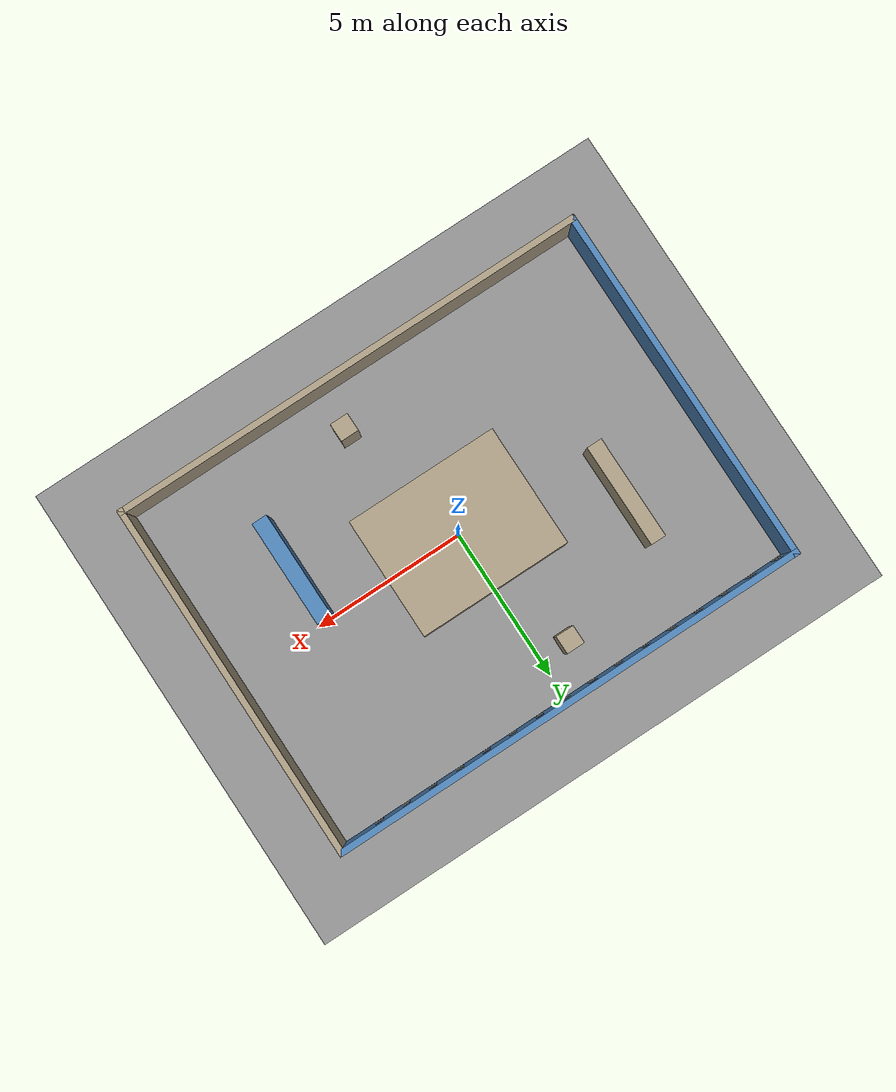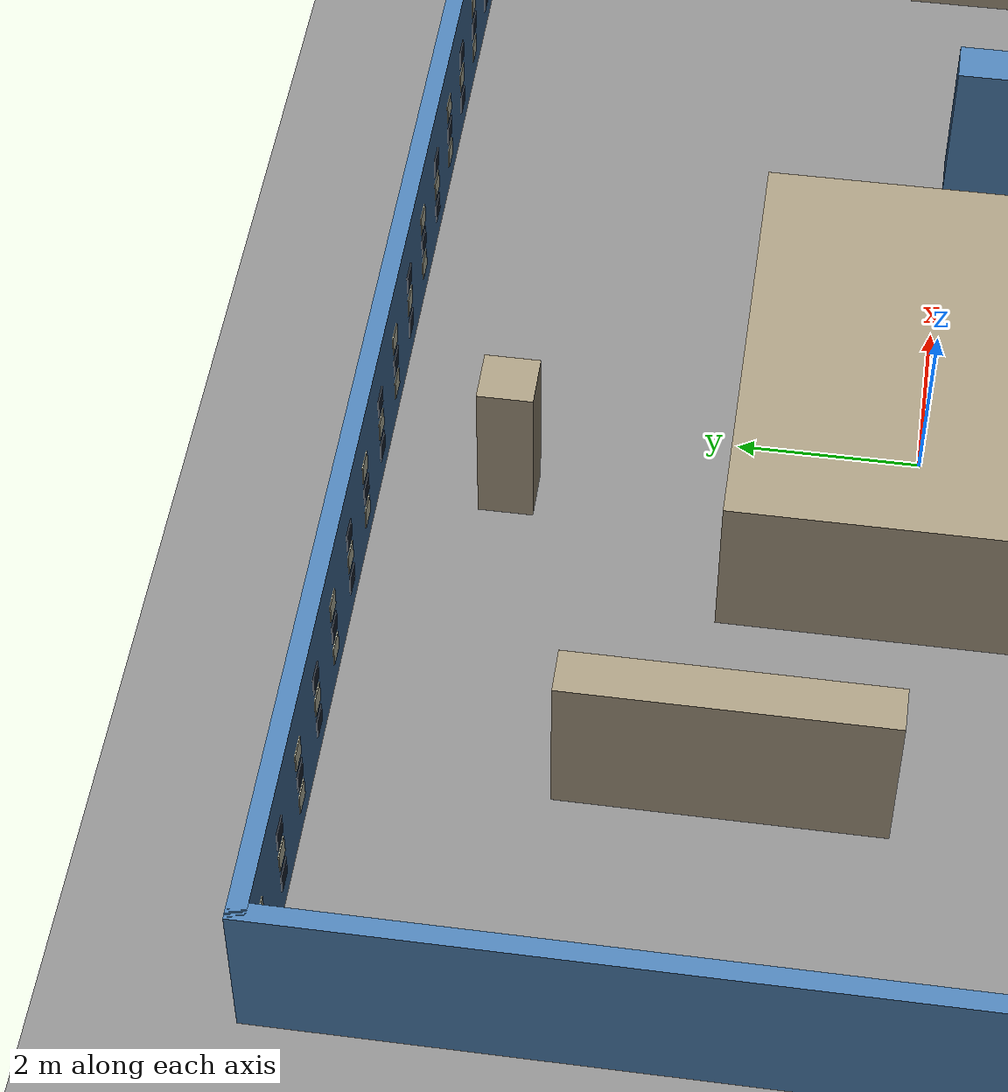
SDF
<?xml version="1.0"?><sdf version="1.6"><world name="test_ring">
      <physics name="ode" type="ode"><max_step_size>0.002</max_step_size><real_time_update_rate>500</real_time_update_rate></physics>
      <scene><ambient>0.5 0.5 0.5 1</ambient><background>0.2 0.2 0.2 1</background><shadows>false</shadows></scene>
      <light name="sun" type="directional"><pose>0 0 10 0 0 0</pose><diffuse>0.8 0.8 0.8 1</diffuse>
      <specular>0.1 0.1 0.1 1</specular><direction>0.1 0.2 -1</direction><cast_shadows>false</cast_shadows></light>
      <model name="ground"><static>true</static><pose>0 0 -.05 0 0 0</pose><link name="ground">
      <collision name="ground"><geometry><box><size>20 16 .1</size></box></geometry></collision>
      <visual name="ground"><geometry><box><size>20 16 .1</size></box></geometry>
      <material><ambient>0.55 0.55 0.55 1</ambient><diffuse>0.55 0.55 0.55 1</diffuse></material></visual></link></model>
      <model name="wall_0"><static>true</static>
      <pose>-7.9 0.0 0.9 0 0 0</pose><link name="body">
      <collision name="collision"><geometry><box><size>0.20000000000000018 12 1.8</size></box></geometry></collision>
      <visual name="visual"><geometry><box><size>0.20000000000000018 12 1.8</size></box></geometry>
      <material><ambient>0.3 0.5 0.7 1</ambient><diffuse>0.3 0.5 0.7 1</diffuse></material></visual>
      </link></model><model name="wall_1"><static>true</static>
      <pose>7.9 0.0 0.9 0 0 0</pose><link name="body">
      <collision name="collision"><geometry><box><size>0.20000000000000018 12 1.8</size></box></geometry></collision>
      <visual name="visual"><geometry><box><size>0.20000000000000018 12 1.8</size></box></geometry>
      <material><ambient>0.65 0.60 0.5 1</ambient><diffuse>0.65 0.60 0.5 1</diffuse></material></visual>
      </link></model><model name="wall_2"><static>true</static>
      <pose>0.0 -5.9 0.9 0 0 0</pose><link name="body">
      <collision name="collision"><geometry><box><size>16 0.20000000000000018 1.8</size></box></geometry></collision>
      <visual name="visual"><geometry><box><size>16 0.20000000000000018 1.8</size></box></geometry>
      <material><ambient>0.65 0.60 0.5 1</ambient><diffuse>0.65 0.60 0.5 1</diffuse></material></visual>
      </link></model><model name="wall_3"><static>true</static>
      <pose>0.0 5.9 0.9 0 0 0</pose><link name="body">
      <collision name="collision"><geometry><box><size>16 0.20000000000000018 1.8</size></box></geometry></collision>
      <visual name="visual"><geometry><box><size>16 0.20000000000000018 1.8</size></box></geometry>
      <material><ambient>0.3 0.5 0.7 1</ambient><diffuse>0.3 0.5 0.7 1</diffuse></material></visual>
      </link></model><model name="wall_4"><static>true</static>
      <pose>0.0 0.0 0.9 0 0 0</pose><link name="body">
      <collision name="collision"><geometry><box><size>5.0 4.0 1.8</size></box></geometry></collision>
      <visual name="visual"><geometry><box><size>5.0 4.0 1.8</size></box></geometry>
      <material><ambient>0.65 0.60 0.5 1</ambient><diffuse>0.65 0.60 0.5 1</diffuse></material></visual>
      </link></model><model name="wall_5"><static>true</static>
      <pose>-4.75 1.7 0.9 0 0 0</pose><link name="body">
      <collision name="collision"><geometry><box><size>0.5 3.4 1.8</size></box></geometry></collision>
      <visual name="visual"><geometry><box><size>0.5 3.4 1.8</size></box></geometry>
      <material><ambient>0.65 0.60 0.5 1</ambient><diffuse>0.65 0.60 0.5 1</diffuse></material></visual>
      </link></model><model name="wall_6"><static>true</static>
      <pose>4.65 -1.75 0.9 0 0 0</pose><link name="body">
      <collision name="collision"><geometry><box><size>0.5 3.5 1.8</size></box></geometry></collision>
      <visual name="visual"><geometry><box><size>0.5 3.5 1.8</size></box></geometry>
      <material><ambient>0.3 0.5 0.7 1</ambient><diffuse>0.3 0.5 0.7 1</diffuse></material></visual>
      </link></model><model name="wall_7"><static>true</static>
      <pose>-1.0 4.4 0.9 0 0 0</pose><link name="body">
      <collision name="collision"><geometry><box><size>0.6000000000000001 0.6000000000000005 1.8</size></box></geometry></collision>
      <visual name="visual"><geometry><box><size>0.6000000000000001 0.6000000000000005 1.8</size></box></geometry>
      <material><ambient>0.65 0.60 0.5 1</ambient><diffuse>0.65 0.60 0.5 1</diffuse></material></visual>
      </link></model><model name="wall_8"><static>true</static>
      <pose>1.1 -4.4 0.9 0 0 0</pose><link name="body">
      <collision name="collision"><geometry><box><size>0.5999999999999999 0.6000000000000005 1.8</size></box></geometry></collision>
      <visual name="visual"><geometry><box><size>0.5999999999999999 0.6000000000000005 1.8</size></box></geometry>
      <material><ambient>0.65 0.60 0.5 1</ambient><diffuse>0.65 0.60 0.5 1</diffuse></material></visual>
      </link></model><model name="panel_0_0"><static>true</static>
              <pose>-7.5 5.795 0.45 0 0 0</pose><link name="visual_only">
              <visual name="panel"><geometry><box><size>.25 .01 .25</size></box></geometry>
              <material><ambient>0.85 0.85 0.75 1</ambient><diffuse>0.85 0.85 0.75 1</diffuse></material></visual>
              </link></model><model name="panel_0_1"><static>true</static>
              <pose>-7.5 5.795 0.8 0 0 0</pose><link name="visual_only">
              <visual name="panel"><geometry><box><size>.25 .01 .25</size></box></geometry>
              <material><ambient>0.12 0.16 0.22 1</ambient><diffuse>0.12 0.16 0.22 1</diffuse></material></visual>
              </link></model><model name="panel_0_2"><static>true</static>
              <pose>-7.5 5.795 1.15 0 0 0</pose><link name="visual_only">
              <visual name="panel"><geometry><box><size>.25 .01 .25</size></box></geometry>
              <material><ambient>0.85 0.85 0.75 1</ambient><diffuse>0.85 0.85 0.75 1</diffuse></material></visual>
              </link></model><model name="panel_1_0"><static>true</static>
              <pose>-6.5625 5.795 0.45 0 0 0</pose><link name="visual_only">
              <visual name="panel"><geometry><box><size>.25 .01 .25</size></box></geometry>
              <material><ambient>0.12 0.16 0.22 1</ambient><diffuse>0.12 0.16 0.22 1</diffuse></material></visual>
              </link></model><model name="panel_1_1"><static>true</static>
              <pose>-6.5625 5.795 0.8 0 0 0</pose><link name="visual_only">
              <visual name="panel"><geometry><box><size>.25 .01 .25</size></box></geometry>
              <material><ambient>0.85 0.85 0.75 1</ambient><diffuse>0.85 0.85 0.75 1</diffuse></material></visual>
              </link></model><model name="panel_1_2"><static>true</static>
              <pose>-6.5625 5.795 1.15 0 0 0</pose><link name="visual_only">
              <visual name="panel"><geometry><box><size>.25 .01 .25</size></box></geometry>
              <material><ambient>0.12 0.16 0.22 1</ambient><diffuse>0.12 0.16 0.22 1</diffuse></material></visual>
              </link></model><model name="panel_2_0"><static>true</static>
              <pose>-5.625 5.795 0.45 0 0 0</pose><link name="visual_only">
              <visual name="panel"><geometry><box><size>.25 .01 .25</size></box></geometry>
              <material><ambient>0.85 0.85 0.75 1</ambient><diffuse>0.85 0.85 0.75 1</diffuse></material></visual>
              </link></model><model name="panel_2_1"><static>true</static>
              <pose>-5.625 5.795 0.8 0 0 0</pose><link name="visual_only">
              <visual name="panel"><geometry><box><size>.25 .01 .25</size></box></geometry>
              <material><ambient>0.12 0.16 0.22 1</ambient><diffuse>0.12 0.16 0.22 1</diffuse></material></visual>
              </link></model><model name="panel_2_2"><static>true</static>
              <pose>-5.625 5.795 1.15 0 0 0</pose><link name="visual_only">
              <visual name="panel"><geometry><box><size>.25 .01 .25</size></box></geometry>
              <material><ambient>0.85 0.85 0.75 1</ambient><diffuse>0.85 0.85 0.75 1</diffuse></material></visual>
              </link></model><model name="panel_3_0"><static>true</static>
              <pose>-4.6875 5.795 0.45 0 0 0</pose><link name="visual_only">
              <visual name="panel"><geometry><box><size>.25 .01 .25</size></box></geometry>
              <material><ambient>0.12 0.16 0.22 1</ambient><diffuse>0.12 0.16 0.22 1</diffuse></material></visual>
              </link></model><model name="panel_3_1"><static>true</static>
              <pose>-4.6875 5.795 0.8 0 0 0</pose><link name="visual_only">
              <visual name="panel"><geometry><box><size>.25 .01 .25</size></box></geometry>
              <material><ambient>0.85 0.85 0.75 1</ambient><diffuse>0.85 0.85 0.75 1</diffuse></material></visual>
              </link></model><model name="panel_3_2"><static>true</static>
              <pose>-4.6875 5.795 1.15 0 0 0</pose><link name="visual_only">
              <visual name="panel"><geometry><box><size>.25 .01 .25</size></box></geometry>
              <material><ambient>0.12 0.16 0.22 1</ambient><diffuse>0.12 0.16 0.22 1</diffuse></material></visual>
              </link></model><model name="panel_4_0"><static>true</static>
              <pose>-3.75 5.795 0.45 0 0 0</pose><link name="visual_only">
              <visual name="panel"><geometry><box><size>.25 .01 .25</size></box></geometry>
              <material><ambient>0.85 0.85 0.75 1</ambient><diffuse>0.85 0.85 0.75 1</diffuse></material></visual>
              </link></model><model name="panel_4_1"><static>true</static>
              <pose>-3.75 5.795 0.8 0 0 0</pose><link name="visual_only">
              <visual name="panel"><geometry><box><size>.25 .01 .25</size></box></geometry>
              <material><ambient>0.12 0.16 0.22 1</ambient><diffuse>0.12 0.16 0.22 1</diffuse></material></visual>
              </link></model><model name="panel_4_2"><static>true</static>
              <pose>-3.75 5.795 1.15 0 0 0</pose><link name="visual_only">
              <visual name="panel"><geometry><box><size>.25 .01 .25</size></box></geometry>
              <material><ambient>0.85 0.85 0.75 1</ambient><diffuse>0.85 0.85 0.75 1</diffuse></material></visual>
              </link></model><model name="panel_5_0"><static>true</static>
              <pose>-2.8125 5.795 0.45 0 0 0</pose><link name="visual_only">
              <visual name="panel"><geometry><box><size>.25 .01 .25</size></box></geometry>
              <material><ambient>0.12 0.16 0.22 1</ambient><diffuse>0.12 0.16 0.22 1</diffuse></material></visual>
              </link></model><model name="panel_5_1"><static>true</static>
              <pose>-2.8125 5.795 0.8 0 0 0</pose><link name="visual_only">
              <visual name="panel"><geometry><box><size>.25 .01 .25</size></box></geometry>
              <material><ambient>0.85 0.85 0.75 1</ambient><diffuse>0.85 0.85 0.75 1</diffuse></material></visual>
              </link></model><model name="panel_5_2"><static>true</static>
              <pose>-2.8125 5.795 1.15 0 0 0</pose><link name="visual_only">
              <visual name="panel"><geometry><box><size>.25 .01 .25</size></box></geometry>
              <material><ambient>0.12 0.16 0.22 1</ambient><diffuse>0.12 0.16 0.22 1</diffuse></material></visual>
              </link></model><model name="panel_6_0"><static>true</static>
              <pose>-1.875 5.795 0.45 0 0 0</pose><link name="visual_only">
              <visual name="panel"><geometry><box><size>.25 .01 .25</size></box></geometry>
              <material><ambient>0.85 0.85 0.75 1</ambient><diffuse>0.85 0.85 0.75 1</diffuse></material></visual>
              </link></model><model name="panel_6_1"><static>true</static>
              <pose>-1.875 5.795 0.8 0 0 0</pose><link name="visual_only">
              <visual name="panel"><geometry><box><size>.25 .01 .25</size></box></geometry>
              <material><ambient>0.12 0.16 0.22 1</ambient><diffuse>0.12 0.16 0.22 1</diffuse></material></visual>
              </link></model><model name="panel_6_2"><static>true</static>
              <pose>-1.875 5.795 1.15 0 0 0</pose><link name="visual_only">
              <visual name="panel"><geometry><box><size>.25 .01 .25</size></box></geometry>
              <material><ambient>0.85 0.85 0.75 1</ambient><diffuse>0.85 0.85 0.75 1</diffuse></material></visual>
              </link></model><model name="panel_7_0"><static>true</static>
              <pose>-0.9375 5.795 0.45 0 0 0</pose><link name="visual_only">
              <visual name="panel"><geometry><box><size>.25 .01 .25</size></box></geometry>
              <material><ambient>0.12 0.16 0.22 1</ambient><diffuse>0.12 0.16 0.22 1</diffuse></material></visual>
              </link></model><model name="panel_7_1"><static>true</static>
              <pose>-0.9375 5.795 0.8 0 0 0</pose><link name="visual_only">
              <visual name="panel"><geometry><box><size>.25 .01 .25</size></box></geometry>
              <material><ambient>0.85 0.85 0.75 1</ambient><diffuse>0.85 0.85 0.75 1</diffuse></material></visual>
              </link></model><model name="panel_7_2"><static>true</static>
              <pose>-0.9375 5.795 1.15 0 0 0</pose><link name="visual_only">
              <visual name="panel"><geometry><box><size>.25 .01 .25</size></box></geometry>
              <material><ambient>0.12 0.16 0.22 1</ambient><diffuse>0.12 0.16 0.22 1</diffuse></material></visual>
              </link></model><model name="panel_8_0"><static>true</static>
              <pose>0.0 5.795 0.45 0 0 0</pose><link name="visual_only">
              <visual name="panel"><geometry><box><size>.25 .01 .25</size></box></geometry>
              <material><ambient>0.85 0.85 0.75 1</ambient><diffuse>0.85 0.85 0.75 1</diffuse></material></visual>
              </link></model><model name="panel_8_1"><static>true</static>
              <pose>0.0 5.795 0.8 0 0 0</pose><link name="visual_only">
              <visual name="panel"><geometry><box><size>.25 .01 .25</size></box></geometry>
              <material><ambient>0.12 0.16 0.22 1</ambient><diffuse>0.12 0.16 0.22 1</diffuse></material></visual>
              </link></model><model name="panel_8_2"><static>true</static>
              <pose>0.0 5.795 1.15 0 0 0</pose><link name="visual_only">
              <visual name="panel"><geometry><box><size>.25 .01 .25</size></box></geometry>
              <material><ambient>0.85 0.85 0.75 1</ambient><diffuse>0.85 0.85 0.75 1</diffuse></material></visual>
              </link></model><model name="panel_9_0"><static>true</static>
              <pose>0.9375 5.795 0.45 0 0 0</pose><link name="visual_only">
              <visual name="panel"><geometry><box><size>.25 .01 .25</size></box></geometry>
              <material><ambient>0.12 0.16 0.22 1</ambient><diffuse>0.12 0.16 0.22 1</diffuse></material></visual>
              </link></model><model name="panel_9_1"><static>true</static>
              <pose>0.9375 5.795 0.8 0 0 0</pose><link name="visual_only">
              <visual name="panel"><geometry><box><size>.25 .01 .25</size></box></geometry>
              <material><ambient>0.85 0.85 0.75 1</ambient><diffuse>0.85 0.85 0.75 1</diffuse></material></visual>
              </link></model><model name="panel_9_2"><static>true</static>
              <pose>0.9375 5.795 1.15 0 0 0</pose><link name="visual_only">
              <visual name="panel"><geometry><box><size>.25 .01 .25</size></box></geometry>
              <material><ambient>0.12 0.16 0.22 1</ambient><diffuse>0.12 0.16 0.22 1</diffuse></material></visual>
              </link></model><model name="panel_10_0"><static>true</static>
              <pose>1.875 5.795 0.45 0 0 0</pose><link name="visual_only">
              <visual name="panel"><geometry><box><size>.25 .01 .25</size></box></geometry>
              <material><ambient>0.85 0.85 0.75 1</ambient><diffuse>0.85 0.85 0.75 1</diffuse></material></visual>
              </link></model><model name="panel_10_1"><static>true</static>
              <pose>1.875 5.795 0.8 0 0 0</pose><link name="visual_only">
              <visual name="panel"><geometry><box><size>.25 .01 .25</size></box></geometry>
              <material><ambient>0.12 0.16 0.22 1</ambient><diffuse>0.12 0.16 0.22 1</diffuse></material></visual>
              </link></model><model name="panel_10_2"><static>true</static>
              <pose>1.875 5.795 1.15 0 0 0</pose><link name="visual_only">
              <visual name="panel"><geometry><box><size>.25 .01 .25</size></box></geometry>
              <material><ambient>0.85 0.85 0.75 1</ambient><diffuse>0.85 0.85 0.75 1</diffuse></material></visual>
              </link></model><model name="panel_11_0"><static>true</static>
              <pose>2.8125 5.795 0.45 0 0 0</pose><link name="visual_only">
              <visual name="panel"><geometry><box><size>.25 .01 .25</size></box></geometry>
              <material><ambient>0.12 0.16 0.22 1</ambient><diffuse>0.12 0.16 0.22 1</diffuse></material></visual>
              </link></model><model name="panel_11_1"><static>true</static>
              <pose>2.8125 5.795 0.8 0 0 0</pose><link name="visual_only">
              <visual name="panel"><geometry><box><size>.25 .01 .25</size></box></geometry>
              <material><ambient>0.85 0.85 0.75 1</ambient><diffuse>0.85 0.85 0.75 1</diffuse></material></visual>
              </link></model><model name="panel_11_2"><static>true</static>
              <pose>2.8125 5.795 1.15 0 0 0</pose><link name="visual_only">
              <visual name="panel"><geometry><box><size>.25 .01 .25</size></box></geometry>
              <material><ambient>0.12 0.16 0.22 1</ambient><diffuse>0.12 0.16 0.22 1</diffuse></material></visual>
              </link></model><model name="panel_12_0"><static>true</static>
              <pose>3.75 5.795 0.45 0 0 0</pose><link name="visual_only">
              <visual name="panel"><geometry><box><size>.25 .01 .25</size></box></geometry>
              <material><ambient>0.85 0.85 0.75 1</ambient><diffuse>0.85 0.85 0.75 1</diffuse></material></visual>
              </link></model><model name="panel_12_1"><static>true</static>
              <pose>3.75 5.795 0.8 0 0 0</pose><link name="visual_only">
              <visual name="panel"><geometry><box><size>.25 .01 .25</size></box></geometry>
              <material><ambient>0.12 0.16 0.22 1</ambient><diffuse>0.12 0.16 0.22 1</diffuse></material></visual>
              </link></model><model name="panel_12_2"><static>true</static>
              <pose>3.75 5.795 1.15 0 0 0</pose><link name="visual_only">
              <visual name="panel"><geometry><box><size>.25 .01 .25</size></box></geometry>
              <material><ambient>0.85 0.85 0.75 1</ambient><diffuse>0.85 0.85 0.75 1</diffuse></material></visual>
              </link></model><model name="panel_13_0"><static>true</static>
              <pose>4.6875 5.795 0.45 0 0 0</pose><link name="visual_only">
              <visual name="panel"><geometry><box><size>.25 .01 .25</size></box></geometry>
              <material><ambient>0.12 0.16 0.22 1</ambient><diffuse>0.12 0.16 0.22 1</diffuse></material></visual>
              </link></model><model name="panel_13_1"><static>true</static>
              <pose>4.6875 5.795 0.8 0 0 0</pose><link name="visual_only">
              <visual name="panel"><geometry><box><size>.25 .01 .25</size></box></geometry>
              <material><ambient>0.85 0.85 0.75 1</ambient><diffuse>0.85 0.85 0.75 1</diffuse></material></visual>
              </link></model><model name="panel_13_2"><static>true</static>
              <pose>4.6875 5.795 1.15 0 0 0</pose><link name="visual_only">
              <visual name="panel"><geometry><box><size>.25 .01 .25</size></box></geometry>
              <material><ambient>0.12 0.16 0.22 1</ambient><diffuse>0.12 0.16 0.22 1</diffuse></material></visual>
              </link></model><model name="panel_14_0"><static>true</static>
              <pose>5.625 5.795 0.45 0 0 0</pose><link name="visual_only">
              <visual name="panel"><geometry><box><size>.25 .01 .25</size></box></geometry>
              <material><ambient>0.85 0.85 0.75 1</ambient><diffuse>0.85 0.85 0.75 1</diffuse></material></visual>
              </link></model><model name="panel_14_1"><static>true</static>
              <pose>5.625 5.795 0.8 0 0 0</pose><link name="visual_only">
              <visual name="panel"><geometry><box><size>.25 .01 .25</size></box></geometry>
              <material><ambient>0.12 0.16 0.22 1</ambient><diffuse>0.12 0.16 0.22 1</diffuse></material></visual>
              </link></model><model name="panel_14_2"><static>true</static>
              <pose>5.625 5.795 1.15 0 0 0</pose><link name="visual_only">
              <visual name="panel"><geometry><box><size>.25 .01 .25</size></box></geometry>
              <material><ambient>0.85 0.85 0.75 1</ambient><diffuse>0.85 0.85 0.75 1</diffuse></material></visual>
              </link></model><model name="panel_15_0"><static>true</static>
              <pose>6.5625 5.795 0.45 0 0 0</pose><link name="visual_only">
              <visual name="panel"><geometry><box><size>.25 .01 .25</size></box></geometry>
              <material><ambient>0.12 0.16 0.22 1</ambient><diffuse>0.12 0.16 0.22 1</diffuse></material></visual>
              </link></model><model name="panel_15_1"><static>true</static>
              <pose>6.5625 5.795 0.8 0 0 0</pose><link name="visual_only">
              <visual name="panel"><geometry><box><size>.25 .01 .25</size></box></geometry>
              <material><ambient>0.85 0.85 0.75 1</ambient><diffuse>0.85 0.85 0.75 1</diffuse></material></visual>
              </link></model><model name="panel_15_2"><static>true</static>
              <pose>6.5625 5.795 1.15 0 0 0</pose><link name="visual_only">
              <visual name="panel"><geometry><box><size>.25 .01 .25</size></box></geometry>
              <material><ambient>0.12 0.16 0.22 1</ambient><diffuse>0.12 0.16 0.22 1</diffuse></material></visual>
              </link></model>
      <plugin name="state" filename="libgazebo_ros_state.so"><update_rate>30</update_rate></plugin>
    </world></sdf>
